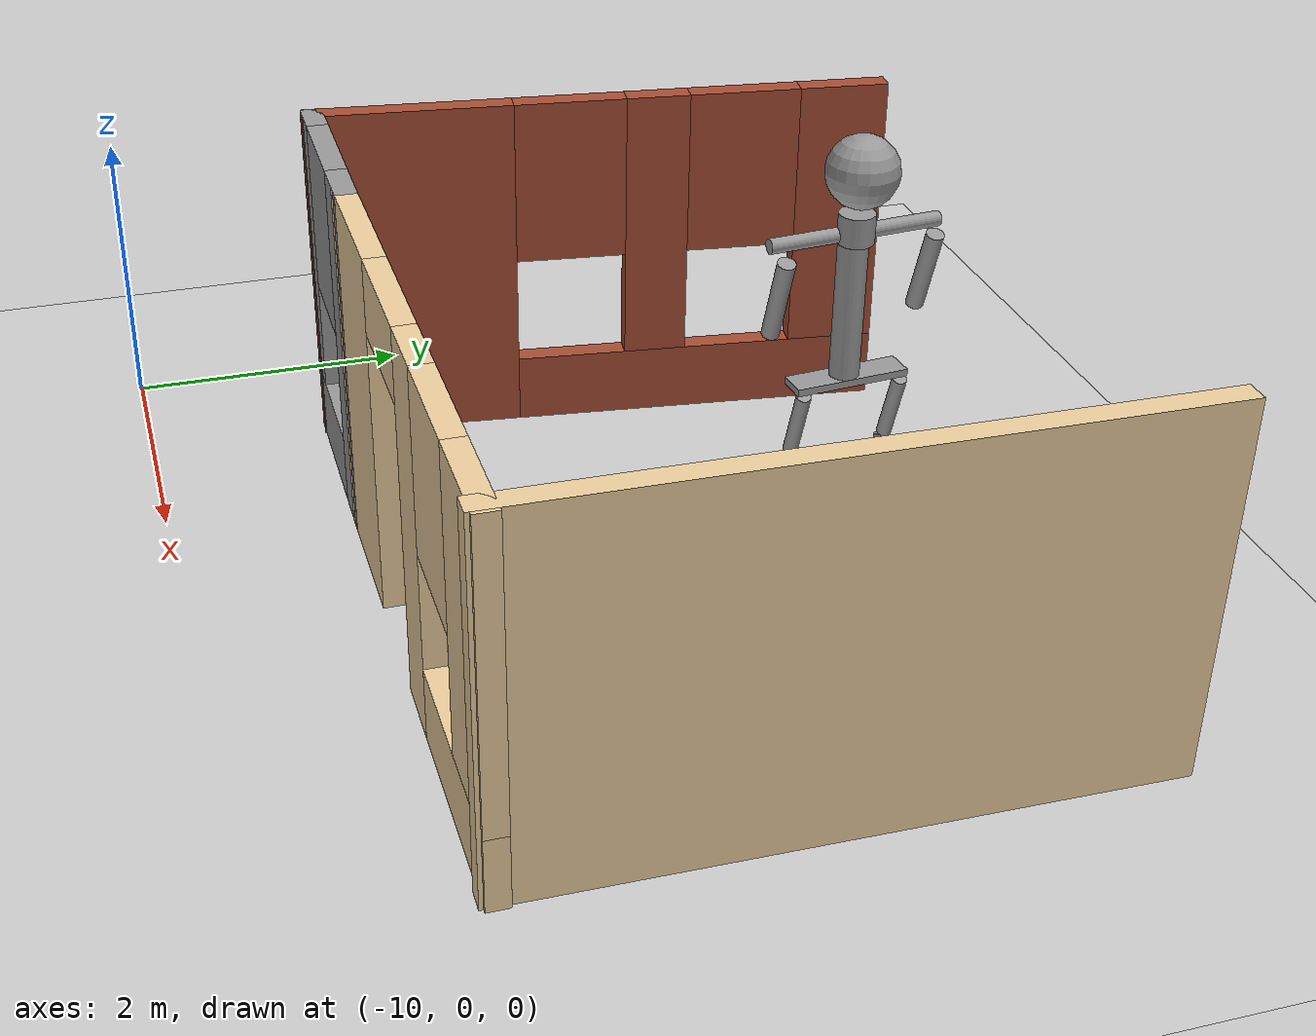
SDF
<sdf version="1.6">
 <world name="default">
  <model name="ground_plane">
   <static>1</static>
   <link name="link">
    <collision name="collision">
     <geometry><plane><normal>0 0 1</normal><size>100 100</size></plane></geometry>
     <surface><friction><ode><mu>100</mu><mu2>50</mu2></ode></friction></surface>
    </collision>
    <visual name="visual">
     <cast_shadows>0</cast_shadows>
     <geometry><plane><normal>0 0 1</normal><size>100 100</size></plane></geometry>
     <material>
      <script><uri>file://media/materials/scripts/gazebo.material</uri><name>Gazebo/Grey</name></script>
     </material>
    </visual>
   </link>
  </model>
  <model name="Building">
   <pose>-0.293126 -0.203944 0 0 -0 0</pose>
   <link name="Wall_23">
    <pose>-5.40433 1.5402 0 0 -0 0</pose>
    <visual name="Wall_23_Visual_0">
     <pose>-1.44346 0 1.25 0 -0 0</pose>
     <geometry><box><size>1.11308 0.15 2.5</size></box></geometry>
     <material>
      <script><uri>file://media/materials/scripts/gazebo.material</uri><name>Gazebo/Grey</name></script>
      <ambient>0.921569 0.807843 0.615686 1</ambient>
     </material>
     <meta><layer>0</layer></meta>
    </visual>
    <collision name="Wall_23_Collision_0">
     <geometry><box><size>1.11308 0.15 2.5</size></box></geometry>
     <pose>-1.44346 0 1.25 0 -0 0</pose>
    </collision>
    <visual name="Wall_23_Visual_1">
     <pose>0.249326 0 1.25 0 -0 0</pose>
     <geometry><box><size>0.4725 0.15 2.5</size></box></geometry>
     <material>
      <script><uri>file://media/materials/scripts/gazebo.material</uri><name>Gazebo/Grey</name></script>
      <ambient>0.921569 0.807843 0.615686 1</ambient>
     </material>
     <meta><layer>0</layer></meta>
    </visual>
    <collision name="Wall_23_Collision_1">
     <geometry><box><size>0.4725 0.15 2.5</size></box></geometry>
     <pose>0.249326 0 1.25 0 -0 0</pose>
    </collision>
    <visual name="Wall_23_Visual_2">
     <pose>1.24279 0 0.25 0 -0 0</pose>
     <geometry><box><size>1.51442 0.15 0.5</size></box></geometry>
     <material>
      <script><uri>file://media/materials/scripts/gazebo.material</uri><name>Gazebo/Grey</name></script>
      <ambient>0.921569 0.807843 0.615686 1</ambient>
     </material>
     <meta><layer>0</layer></meta>
    </visual>
    <collision name="Wall_23_Collision_2">
     <geometry><box><size>1.51442 0.15 0.5</size></box></geometry>
     <pose>1.24279 0 0.25 0 -0 0</pose>
    </collision>
    <visual name="Wall_23_Visual_3">
     <pose>1.64279 0 1.5 0 -0 0</pose>
     <geometry><box><size>0.714424 0.15 2</size></box></geometry>
     <material>
      <script><uri>file://media/materials/scripts/gazebo.material</uri><name>Gazebo/Grey</name></script>
      <ambient>0.921569 0.807843 0.615686 1</ambient>
     </material>
     <meta><layer>0</layer></meta>
    </visual>
    <collision name="Wall_23_Collision_3">
     <geometry><box><size>0.714424 0.15 2</size></box></geometry>
     <pose>1.64279 0 1.5 0 -0 0</pose>
    </collision>
    <visual name="Wall_23_Visual_4">
     <pose>0.885576 0 1.9 0 -0 0</pose>
     <geometry><box><size>0.8 0.15 1.2</size></box></geometry>
     <material>
      <script><uri>file://media/materials/scripts/gazebo.material</uri><name>Gazebo/Grey</name></script>
      <ambient>0.921569 0.807843 0.615686 1</ambient>
     </material>
     <meta><layer>0</layer></meta>
    </visual>
    <collision name="Wall_23_Collision_4">
     <geometry><box><size>0.8 0.15 1.2</size></box></geometry>
     <pose>0.885576 0 1.9 0 -0 0</pose>
    </collision>
    <visual name="Wall_23_Visual_5">
     <pose>-0.436924 0 2.25 0 -0 0</pose>
     <geometry><box><size>0.9 0.15 0.5</size></box></geometry>
     <material>
      <script><uri>file://media/materials/scripts/gazebo.material</uri><name>Gazebo/Grey</name></script>
      <ambient>0.921569 0.807843 0.615686 1</ambient>
     </material>
     <meta><layer>0</layer></meta>
    </visual>
    <collision name="Wall_23_Collision_5">
     <geometry><box><size>0.9 0.15 0.5</size></box></geometry>
     <pose>-0.436924 0 2.25 0 -0 0</pose>
    </collision>
   </link>
   <link name="Wall_33">
    <collision name="Wall_33_Collision">
     <geometry><box><size>4.20944 0.15 2.5</size></box></geometry>
     <pose>0 0 1.25 0 -0 0</pose>
    </collision>
    <visual name="Wall_33_Visual">
     <pose>0 0 1.25 0 -0 0</pose>
     <geometry><box><size>4.20944 0.15 2.5</size></box></geometry>
     <material>
      <script><uri>file://media/materials/scripts/gazebo.material</uri><name>Gazebo/Grey</name></script>
      <ambient>0.921569 0.807843 0.615686 1</ambient>
     </material>
     <meta><layer>0</layer></meta>
    </visual>
    <pose>-3.48131 3.54332 0 0 -0 1.55874</pose>
   </link>
   <link name="Wall_7">
    <pose>-8.01757 1.54676 0 0 -0 3.13207</pose>
    <visual name="Wall_7_Visual_0">
     <pose>-0.554694 0 1.25 0 -0 0</pose>
     <geometry><box><size>0.417153 0.15 2.5</size></box></geometry>
     <material>
      <script><uri>file://media/materials/scripts/gazebo.material</uri><name>Gazebo/Grey</name></script>
      <ambient>1 1 1 1</ambient>
     </material>
     <meta><layer>0</layer></meta>
    </visual>
    <collision name="Wall_7_Collision_0">
     <geometry><box><size>0.417153 0.15 2.5</size></box></geometry>
     <pose>-0.554694 0 1.25 0 -0 0</pose>
    </collision>
    <visual name="Wall_7_Visual_1">
     <pose>0.208577 0 0.25 0 -0 0</pose>
     <geometry><box><size>1.10939 0.15 0.5</size></box></geometry>
     <material>
      <script><uri>file://media/materials/scripts/gazebo.material</uri><name>Gazebo/Grey</name></script>
      <ambient>1 1 1 1</ambient>
     </material>
     <meta><layer>0</layer></meta>
    </visual>
    <collision name="Wall_7_Collision_1">
     <geometry><box><size>1.10939 0.15 0.5</size></box></geometry>
     <pose>0.208577 0 0.25 0 -0 0</pose>
    </collision>
    <visual name="Wall_7_Visual_2">
     <pose>0.608577 0 1.5 0 -0 0</pose>
     <geometry><box><size>0.309387 0.15 2</size></box></geometry>
     <material>
      <script><uri>file://media/materials/scripts/gazebo.material</uri><name>Gazebo/Grey</name></script>
      <ambient>1 1 1 1</ambient>
     </material>
     <meta><layer>0</layer></meta>
    </visual>
    <collision name="Wall_7_Collision_2">
     <geometry><box><size>0.309387 0.15 2</size></box></geometry>
     <pose>0.608577 0 1.5 0 -0 0</pose>
    </collision>
    <visual name="Wall_7_Visual_3">
     <pose>0.053883 0 1.9 0 -0 0</pose>
     <geometry><box><size>0.8 0.15 1.2</size></box></geometry>
     <material>
      <script><uri>file://media/materials/scripts/gazebo.material</uri><name>Gazebo/Grey</name></script>
      <ambient>1 1 1 1</ambient>
     </material>
     <meta><layer>0</layer></meta>
    </visual>
    <collision name="Wall_7_Collision_3">
     <geometry><box><size>0.8 0.15 1.2</size></box></geometry>
     <pose>0.053883 0 1.9 0 -0 0</pose>
    </collision>
   </link>
   <link name="Wall_8">
    <pose>-8.47295 3.54598 0 0 -0 1.45446</pose>
    <visual name="Wall_8_Visual_0">
     <pose>-1.34799 0 1.25 0 -0 0</pose>
     <geometry><box><size>1.46647 0.15 2.5</size></box></geometry>
     <material>
      <script><uri>file://media/materials/scripts/gazebo.material</uri><name>Gazebo/Bricks</name></script>
      <ambient>1 1 1 1</ambient>
     </material>
     <meta><layer>0</layer></meta>
    </visual>
    <collision name="Wall_8_Collision_0">
     <geometry><box><size>1.46647 0.15 2.5</size></box></geometry>
     <pose>-1.34799 0 1.25 0 -0 0</pose>
    </collision>
    <visual name="Wall_8_Visual_1">
     <pose>0.733235 0 0.25 0 -0 0</pose>
     <geometry><box><size>2.69598 0.15 0.5</size></box></geometry>
     <material>
      <script><uri>file://media/materials/scripts/gazebo.material</uri><name>Gazebo/Bricks</name></script>
      <ambient>1 1 1 1</ambient>
     </material>
     <meta><layer>0</layer></meta>
    </visual>
    <collision name="Wall_8_Collision_1">
     <geometry><box><size>2.69598 0.15 0.5</size></box></geometry>
     <pose>0.733235 0 0.25 0 -0 0</pose>
    </collision>
    <visual name="Wall_8_Visual_2">
     <pose>0.413888 0 1.5 0 -0 0</pose>
     <geometry><box><size>0.457289 0.15 2</size></box></geometry>
     <material>
      <script><uri>file://media/materials/scripts/gazebo.material</uri><name>Gazebo/Bricks</name></script>
      <ambient>1 1 1 1</ambient>
     </material>
     <meta><layer>0</layer></meta>
    </visual>
    <collision name="Wall_8_Collision_2">
     <geometry><box><size>0.457289 0.15 2</size></box></geometry>
     <pose>0.413888 0 1.5 0 -0 0</pose>
    </collision>
    <visual name="Wall_8_Visual_3">
     <pose>1.76188 0 1.5 0 -0 0</pose>
     <geometry><box><size>0.638694 0.15 2</size></box></geometry>
     <material>
      <script><uri>file://media/materials/scripts/gazebo.material</uri><name>Gazebo/Bricks</name></script>
      <ambient>1 1 1 1</ambient>
     </material>
     <meta><layer>0</layer></meta>
    </visual>
    <collision name="Wall_8_Collision_3">
     <geometry><box><size>0.638694 0.15 2</size></box></geometry>
     <pose>1.76188 0 1.5 0 -0 0</pose>
    </collision>
    <visual name="Wall_8_Visual_4">
     <pose>-0.214757 0 1.9 0 -0 0</pose>
     <geometry><box><size>0.8 0.15 1.2</size></box></geometry>
     <material>
      <script><uri>file://media/materials/scripts/gazebo.material</uri><name>Gazebo/Bricks</name></script>
      <ambient>1 1 1 1</ambient>
     </material>
     <meta><layer>0</layer></meta>
    </visual>
    <collision name="Wall_8_Collision_4">
     <geometry><box><size>0.8 0.15 1.2</size></box></geometry>
     <pose>-0.214757 0 1.9 0 -0 0</pose>
    </collision>
    <visual name="Wall_8_Visual_5">
     <pose>1.04253 0 1.9 0 -0 0</pose>
     <geometry><box><size>0.8 0.15 1.2</size></box></geometry>
     <material>
      <script><uri>file://media/materials/scripts/gazebo.material</uri><name>Gazebo/Bricks</name></script>
      <ambient>1 1 1 1</ambient>
     </material>
     <meta><layer>0</layer></meta>
    </visual>
    <collision name="Wall_8_Collision_5">
     <geometry><box><size>0.8 0.15 1.2</size></box></geometry>
     <pose>1.04253 0 1.9 0 -0 0</pose>
    </collision>
   </link>
   <static>1</static>
  </model>
  <model name="HumanoidRobot_1">
   <model name="Untitled">
    <model name="HumanoidRobot">
     <link name="link_1">
      <pose>-0.173443 0.410402 2.12746 0 -0 0</pose>
      <inertial>
       <mass>0.94</mass>
       <inertia><ixx>0.1</ixx><ixy>0</ixy><ixz>0</ixz><iyy>0.1</iyy><iyz>0</iyz><izz>0.1</izz></inertia>
      </inertial>
      <visual name="visual">
       <geometry><sphere><radius>0.24</radius></sphere></geometry>
       <material>
        <lighting>1</lighting>
        <script><uri>file://media/materials/scripts/gazebo.material</uri><name>Gazebo/Grey</name></script>
        <shader type="pixel"><normal_map>__default__</normal_map></shader>
        <ambient>0.3 0.3 0.3 1</ambient>
        <diffuse>0.7 0.7 0.7 1</diffuse>
        <specular>0.01 0.01 0.01 1</specular>
        <emissive>0 0 0 1</emissive>
       </material>
      </visual>
      <collision name="collision">
       <geometry><sphere><radius>0.24</radius></sphere></geometry>
       <surface>
        <friction>
         <ode><mu>1</mu><mu2>1</mu2><fdir1>0 0 0</fdir1><slip1>0</slip1><slip2>0</slip2></ode>
         <torsional>
          <coefficient>1</coefficient>
          <patch_radius>0</patch_radius>
          <surface_radius>0</surface_radius>
          <use_patch_radius>1</use_patch_radius>
          <ode><slip>0</slip></ode>
         </torsional>
        </friction>
        <bounce><restitution_coefficient>0</restitution_coefficient><threshold>1e+06</threshold></bounce>
        <contact>
         <collide_without_contact>0</collide_without_contact>
         <collide_without_contact_bitmask>1</collide_without_contact_bitmask>
         <collide_bitmask>1</collide_bitmask>
         <ode>
          <soft_cfm>0</soft_cfm>
          <soft_erp>0.2</soft_erp>
          <kp>1e+13</kp>
          <kd>1</kd>
          <max_vel>0.01</max_vel>
          <min_depth>0</min_depth>
         </ode>
         <bullet>
          <split_impulse>1</split_impulse>
          <split_impulse_penetration_threshold>-0.01</split_impulse_penetration_threshold>
          <soft_cfm>0</soft_cfm>
          <soft_erp>0.2</soft_erp>
          <kp>1e+13</kp>
          <kd>1</kd>
         </bullet>
        </contact>
       </surface>
      </collision>
     </link>
     <link name="link_2">
      <pose>-0.183443 0.400402 1.74746 0 -0 0</pose>
      <inertial>
       <mass>1</mass>
       <inertia><ixx>0.145833</ixx><ixy>0</ixy><ixz>0</ixz><iyy>0.145833</iyy><iyz>0</iyz><izz>0.125</izz></inertia>
      </inertial>
      <visual name="visual">
       <geometry><cylinder><radius>0.12</radius><length>0.2</length></cylinder></geometry>
       <material>
        <lighting>1</lighting>
        <script><uri>file://media/materials/scripts/gazebo.material</uri><name>Gazebo/Grey</name></script>
        <shader type="pixel"><normal_map>__default__</normal_map></shader>
        <ambient>0.3 0.3 0.3 1</ambient>
        <diffuse>0.7 0.7 0.7 1</diffuse>
        <specular>0.01 0.01 0.01 1</specular>
        <emissive>0 0 0 1</emissive>
       </material>
      </visual>
      <collision name="collision">
       <geometry><cylinder><radius>0.12</radius><length>0.2</length></cylinder></geometry>
       <surface>
        <friction>
         <ode><mu>1</mu><mu2>1</mu2><fdir1>0 0 0</fdir1><slip1>0</slip1><slip2>0</slip2></ode>
         <torsional>
          <coefficient>1</coefficient>
          <patch_radius>0</patch_radius>
          <surface_radius>0</surface_radius>
          <use_patch_radius>1</use_patch_radius>
          <ode><slip>0</slip></ode>
         </torsional>
        </friction>
        <bounce><restitution_coefficient>0</restitution_coefficient><threshold>1e+06</threshold></bounce>
        <contact>
         <collide_without_contact>0</collide_without_contact>
         <collide_without_contact_bitmask>1</collide_without_contact_bitmask>
         <collide_bitmask>1</collide_bitmask>
         <ode>
          <soft_cfm>0</soft_cfm>
          <soft_erp>0.2</soft_erp>
          <kp>1e+13</kp>
          <kd>1</kd>
          <max_vel>0.01</max_vel>
          <min_depth>0</min_depth>
         </ode>
         <bullet>
          <split_impulse>1</split_impulse>
          <split_impulse_penetration_threshold>-0.01</split_impulse_penetration_threshold>
          <soft_cfm>0</soft_cfm>
          <soft_erp>0.2</soft_erp>
          <kp>1e+13</kp>
          <kd>1</kd>
         </bullet>
        </contact>
       </surface>
      </collision>
     </link>
     <link name="link_3">
      <pose>-0.218443 0.410402 1.69752 0 -0 0</pose>
      <inertial>
       <mass>1</mass>
       <inertia><ixx>0.145833</ixx><ixy>0</ixy><ixz>0</ixz><iyy>0.145833</iyy><iyz>0</iyz><izz>0.125</izz></inertia>
      </inertial>
      <visual name="visual">
       <pose>0 0 0 1.5707 -0 0</pose>
       <geometry><cylinder><radius>0.05</radius><length>1.2</length></cylinder></geometry>
       <material>
        <lighting>1</lighting>
        <script><uri>file://media/materials/scripts/gazebo.material</uri><name>Gazebo/Grey</name></script>
        <shader type="pixel"><normal_map>__default__</normal_map></shader>
        <ambient>0.3 0.3 0.3 1</ambient>
        <diffuse>0.7 0.7 0.7 1</diffuse>
        <specular>0.01 0.01 0.01 1</specular>
        <emissive>0 0 0 1</emissive>
       </material>
      </visual>
      <collision name="collision">
       <pose>0 0 0 1.5707 -0 0</pose>
       <geometry><cylinder><radius>0.05</radius><length>1.2</length></cylinder></geometry>
       <surface>
        <friction>
         <ode><mu>1</mu><mu2>1</mu2><fdir1>0 0 0</fdir1><slip1>0</slip1><slip2>0</slip2></ode>
         <torsional>
          <coefficient>1</coefficient>
          <patch_radius>0</patch_radius>
          <surface_radius>0</surface_radius>
          <use_patch_radius>1</use_patch_radius>
          <ode><slip>0</slip></ode>
         </torsional>
        </friction>
        <bounce><restitution_coefficient>0</restitution_coefficient><threshold>1e+06</threshold></bounce>
        <contact>
         <collide_without_contact>0</collide_without_contact>
         <collide_without_contact_bitmask>1</collide_without_contact_bitmask>
         <collide_bitmask>1</collide_bitmask>
         <ode>
          <soft_cfm>0</soft_cfm>
          <soft_erp>0.2</soft_erp>
          <kp>1e+13</kp>
          <kd>1</kd>
          <max_vel>0.01</max_vel>
          <min_depth>0</min_depth>
         </ode>
         <bullet>
          <split_impulse>1</split_impulse>
          <split_impulse_penetration_threshold>-0.01</split_impulse_penetration_threshold>
          <soft_cfm>0</soft_cfm>
          <soft_erp>0.2</soft_erp>
          <kp>1e+13</kp>
          <kd>1</kd>
         </bullet>
        </contact>
       </surface>
      </collision>
     </link>
     <link name="link_4">
      <pose>-0.173443 -0.129603 1.34313 0 -0 0</pose>
      <inertial>
       <mass>1</mass>
       <inertia><ixx>0.145833</ixx><ixy>0</ixy><ixz>0</ixz><iyy>0.145833</iyy><iyz>0</iyz><izz>0.125</izz></inertia>
      </inertial>
      <visual name="visual">
       <pose>0 0 0 0 0.3 0</pose>
       <geometry><cylinder><radius>0.06</radius><length>0.6</length></cylinder></geometry>
       <material>
        <lighting>1</lighting>
        <script><uri>file://media/materials/scripts/gazebo.material</uri><name>Gazebo/Grey</name></script>
        <shader type="pixel"><normal_map>__default__</normal_map></shader>
        <ambient>0.3 0.3 0.3 1</ambient>
        <diffuse>0.7 0.7 0.7 1</diffuse>
        <specular>0.01 0.01 0.01 1</specular>
        <emissive>0 0 0 1</emissive>
       </material>
      </visual>
      <collision name="collision">
       <pose>0 0 0 0 0.3 0</pose>
       <geometry><cylinder><radius>0.06</radius><length>0.6</length></cylinder></geometry>
       <surface>
        <friction>
         <ode><mu>1</mu><mu2>1</mu2><fdir1>0 0 0</fdir1><slip1>0</slip1><slip2>0</slip2></ode>
         <torsional>
          <coefficient>1</coefficient>
          <patch_radius>0</patch_radius>
          <surface_radius>0</surface_radius>
          <use_patch_radius>1</use_patch_radius>
          <ode><slip>0</slip></ode>
         </torsional>
        </friction>
        <bounce><restitution_coefficient>0</restitution_coefficient><threshold>1e+06</threshold></bounce>
        <contact>
         <collide_without_contact>0</collide_without_contact>
         <collide_without_contact_bitmask>1</collide_without_contact_bitmask>
         <collide_bitmask>1</collide_bitmask>
         <ode>
          <soft_cfm>0</soft_cfm>
          <soft_erp>0.2</soft_erp>
          <kp>1e+13</kp>
          <kd>1</kd>
          <max_vel>0.01</max_vel>
          <min_depth>0</min_depth>
         </ode>
         <bullet>
          <split_impulse>1</split_impulse>
          <split_impulse_penetration_threshold>-0.01</split_impulse_penetration_threshold>
          <soft_cfm>0</soft_cfm>
          <soft_erp>0.2</soft_erp>
          <kp>1e+13</kp>
          <kd>1</kd>
         </bullet>
        </contact>
       </surface>
      </collision>
     </link>
     <link name="link_4_clone">
      <pose>-0.224419 0.950407 1.34313 0 -0 0</pose>
      <inertial>
       <mass>1</mass>
       <inertia><ixx>0.145833</ixx><ixy>0</ixy><ixz>0</ixz><iyy>0.145833</iyy><iyz>0</iyz><izz>0.125</izz></inertia>
      </inertial>
      <visual name="visual">
       <pose>0 0 0 0 0.3 0</pose>
       <geometry><cylinder><radius>0.06</radius><length>0.6</length></cylinder></geometry>
       <material>
        <lighting>1</lighting>
        <script><uri>file://media/materials/scripts/gazebo.material</uri><name>Gazebo/Grey</name></script>
        <shader type="pixel"><normal_map>__default__</normal_map></shader>
        <ambient>0.3 0.3 0.3 1</ambient>
        <diffuse>0.7 0.7 0.7 1</diffuse>
        <specular>0.01 0.01 0.01 1</specular>
        <emissive>0 0 0 1</emissive>
       </material>
      </visual>
      <collision name="collision">
       <pose>0 0 0 0 0.3 0</pose>
       <geometry><cylinder><radius>0.06</radius><length>0.6</length></cylinder></geometry>
       <surface>
        <friction>
         <ode><mu>1</mu><mu2>1</mu2><fdir1>0 0 0</fdir1><slip1>0</slip1><slip2>0</slip2></ode>
         <torsional>
          <coefficient>1</coefficient>
          <patch_radius>0</patch_radius>
          <surface_radius>0</surface_radius>
          <use_patch_radius>1</use_patch_radius>
          <ode><slip>0</slip></ode>
         </torsional>
        </friction>
        <bounce><restitution_coefficient>0</restitution_coefficient><threshold>1e+06</threshold></bounce>
        <contact>
         <collide_without_contact>0</collide_without_contact>
         <collide_without_contact_bitmask>1</collide_without_contact_bitmask>
         <collide_bitmask>1</collide_bitmask>
         <ode>
          <soft_cfm>0</soft_cfm>
          <soft_erp>0.2</soft_erp>
          <kp>1e+13</kp>
          <kd>1</kd>
          <max_vel>0.01</max_vel>
          <min_depth>0</min_depth>
         </ode>
         <bullet>
          <split_impulse>1</split_impulse>
          <split_impulse_penetration_threshold>-0.01</split_impulse_penetration_threshold>
          <soft_cfm>0</soft_cfm>
          <soft_erp>0.2</soft_erp>
          <kp>1e+13</kp>
          <kd>1</kd>
         </bullet>
        </contact>
       </surface>
      </collision>
     </link>
     <link name="link_5">
      <pose>-0.193443 0.390402 1.14746 0 -0 0</pose>
      <inertial>
       <mass>1</mass>
       <inertia><ixx>0.145833</ixx><ixy>0</ixy><ixz>0</ixz><iyy>0.145833</iyy><iyz>0</iyz><izz>0.125</izz></inertia>
      </inertial>
      <visual name="visual">
       <geometry><cylinder><radius>0.1</radius><length>1</length></cylinder></geometry>
       <material>
        <lighting>1</lighting>
        <script><uri>file://media/materials/scripts/gazebo.material</uri><name>Gazebo/Grey</name></script>
        <shader type="pixel"><normal_map>__default__</normal_map></shader>
        <ambient>0.3 0.3 0.3 1</ambient>
        <diffuse>0.7 0.7 0.7 1</diffuse>
        <specular>0.01 0.01 0.01 1</specular>
        <emissive>0 0 0 1</emissive>
       </material>
      </visual>
      <collision name="collision">
       <geometry><cylinder><radius>0.1</radius><length>1</length></cylinder></geometry>
       <surface>
        <friction>
         <ode><mu>1</mu><mu2>1</mu2><fdir1>0 0 0</fdir1><slip1>0</slip1><slip2>0</slip2></ode>
         <torsional>
          <coefficient>1</coefficient>
          <patch_radius>0</patch_radius>
          <surface_radius>0</surface_radius>
          <use_patch_radius>1</use_patch_radius>
          <ode><slip>0</slip></ode>
         </torsional>
        </friction>
        <bounce><restitution_coefficient>0</restitution_coefficient><threshold>1e+06</threshold></bounce>
        <contact>
         <collide_without_contact>0</collide_without_contact>
         <collide_without_contact_bitmask>1</collide_without_contact_bitmask>
         <collide_bitmask>1</collide_bitmask>
         <ode>
          <soft_cfm>0</soft_cfm>
          <soft_erp>0.2</soft_erp>
          <kp>1e+13</kp>
          <kd>1</kd>
          <max_vel>0.01</max_vel>
          <min_depth>0</min_depth>
         </ode>
         <bullet>
          <split_impulse>1</split_impulse>
          <split_impulse_penetration_threshold>-0.01</split_impulse_penetration_threshold>
          <soft_cfm>0</soft_cfm>
          <soft_erp>0.2</soft_erp>
          <kp>1e+13</kp>
          <kd>1</kd>
         </bullet>
        </contact>
       </surface>
      </collision>
     </link>
     <link name="link_6">
      <pose>-0.193443 0.410402 0.672459 0 -0 0</pose>
      <inertial>
       <mass>1</mass>
       <inertia>
        <ixx>0.166667</ixx>
        <ixy>0</ixy>
        <ixz>0</ixz>
        <iyy>0.166667</iyy>
        <iyz>0</iyz>
        <izz>0.166667</izz>
       </inertia>
      </inertial>
      <visual name="visual">
       <geometry><box><size>0.2 0.8 0.05</size></box></geometry>
       <material>
        <lighting>1</lighting>
        <script><uri>file://media/materials/scripts/gazebo.material</uri><name>Gazebo/Grey</name></script>
        <shader type="pixel"><normal_map>__default__</normal_map></shader>
        <ambient>0.3 0.3 0.3 1</ambient>
        <diffuse>0.7 0.7 0.7 1</diffuse>
        <specular>0.01 0.01 0.01 1</specular>
        <emissive>0 0 0 1</emissive>
       </material>
      </visual>
      <collision name="collision">
       <geometry><box><size>0.2 0.8 0.05</size></box></geometry>
       <surface>
        <friction>
         <ode><mu>1</mu><mu2>1</mu2><fdir1>0 0 0</fdir1><slip1>0</slip1><slip2>0</slip2></ode>
         <torsional>
          <coefficient>1</coefficient>
          <patch_radius>0</patch_radius>
          <surface_radius>0</surface_radius>
          <use_patch_radius>1</use_patch_radius>
          <ode><slip>0</slip></ode>
         </torsional>
        </friction>
        <bounce><restitution_coefficient>0</restitution_coefficient><threshold>1e+06</threshold></bounce>
        <contact>
         <collide_without_contact>0</collide_without_contact>
         <collide_without_contact_bitmask>1</collide_without_contact_bitmask>
         <collide_bitmask>1</collide_bitmask>
         <ode>
          <soft_cfm>0</soft_cfm>
          <soft_erp>0.2</soft_erp>
          <kp>1e+13</kp>
          <kd>1</kd>
          <max_vel>0.01</max_vel>
          <min_depth>0</min_depth>
         </ode>
         <bullet>
          <split_impulse>1</split_impulse>
          <split_impulse_penetration_threshold>-0.01</split_impulse_penetration_threshold>
          <soft_cfm>0</soft_cfm>
          <soft_erp>0.2</soft_erp>
          <kp>1e+13</kp>
          <kd>1</kd>
         </bullet>
        </contact>
       </surface>
      </collision>
     </link>
     <link name="link_7">
      <pose>-0.18262 0.060402 0.393848 0 -0 0</pose>
      <inertial>
       <mass>1</mass>
       <inertia><ixx>0.145833</ixx><ixy>0</ixy><ixz>0</ixz><iyy>0.145833</iyy><iyz>0</iyz><izz>0.125</izz></inertia>
      </inertial>
      <visual name="visual">
       <pose>0 0 0 0 0.3 0</pose>
       <geometry><cylinder><radius>0.05</radius><length>0.5</length></cylinder></geometry>
       <material>
        <lighting>1</lighting>
        <script><uri>file://media/materials/scripts/gazebo.material</uri><name>Gazebo/Grey</name></script>
        <shader type="pixel"><normal_map>__default__</normal_map></shader>
        <ambient>0.3 0.3 0.3 1</ambient>
        <diffuse>0.7 0.7 0.7 1</diffuse>
        <specular>0.01 0.01 0.01 1</specular>
        <emissive>0 0 0 1</emissive>
       </material>
      </visual>
      <collision name="collision">
       <pose>0 0 0 0 0.3 0</pose>
       <geometry><cylinder><radius>0.05</radius><length>0.5</length></cylinder></geometry>
       <surface>
        <friction>
         <ode><mu>1</mu><mu2>1</mu2><fdir1>0 0 0</fdir1><slip1>0</slip1><slip2>0</slip2></ode>
         <torsional>
          <coefficient>1</coefficient>
          <patch_radius>0</patch_radius>
          <surface_radius>0</surface_radius>
          <use_patch_radius>1</use_patch_radius>
          <ode><slip>0</slip></ode>
         </torsional>
        </friction>
        <bounce><restitution_coefficient>0</restitution_coefficient><threshold>1e+06</threshold></bounce>
        <contact>
         <collide_without_contact>0</collide_without_contact>
         <collide_without_contact_bitmask>1</collide_without_contact_bitmask>
         <collide_bitmask>1</collide_bitmask>
         <ode>
          <soft_cfm>0</soft_cfm>
          <soft_erp>0.2</soft_erp>
          <kp>1e+13</kp>
          <kd>1</kd>
          <max_vel>0.01</max_vel>
          <min_depth>0</min_depth>
         </ode>
         <bullet>
          <split_impulse>1</split_impulse>
          <split_impulse_penetration_threshold>-0.01</split_impulse_penetration_threshold>
          <soft_cfm>0</soft_cfm>
          <soft_erp>0.2</soft_erp>
          <kp>1e+13</kp>
          <kd>1</kd>
         </bullet>
        </contact>
       </surface>
      </collision>
     </link>
     <link name="link_7_clone">
      <pose>-0.173443 0.760402 0.393849 0 -0 0</pose>
      <inertial>
       <mass>1</mass>
       <inertia><ixx>0.145833</ixx><ixy>0</ixy><ixz>0</ixz><iyy>0.145833</iyy><iyz>0</iyz><izz>0.125</izz></inertia>
      </inertial>
      <visual name="visual">
       <pose>0 0 0 0 0.3 0</pose>
       <geometry><cylinder><radius>0.05</radius><length>0.5</length></cylinder></geometry>
       <material>
        <lighting>1</lighting>
        <script><uri>file://media/materials/scripts/gazebo.material</uri><name>Gazebo/Grey</name></script>
        <shader type="pixel"><normal_map>__default__</normal_map></shader>
        <ambient>0.3 0.3 0.3 1</ambient>
        <diffuse>0.7 0.7 0.7 1</diffuse>
        <specular>0.01 0.01 0.01 1</specular>
        <emissive>0 0 0 1</emissive>
       </material>
      </visual>
      <collision name="collision">
       <pose>0 0 0 0 0.3 0</pose>
       <geometry><cylinder><radius>0.05</radius><length>0.5</length></cylinder></geometry>
       <surface>
        <friction>
         <ode><mu>1</mu><mu2>1</mu2><fdir1>0 0 0</fdir1><slip1>0</slip1><slip2>0</slip2></ode>
         <torsional>
          <coefficient>1</coefficient>
          <patch_radius>0</patch_radius>
          <surface_radius>0</surface_radius>
          <use_patch_radius>1</use_patch_radius>
          <ode><slip>0</slip></ode>
         </torsional>
        </friction>
        <bounce><restitution_coefficient>0</restitution_coefficient><threshold>1e+06</threshold></bounce>
        <contact>
         <collide_without_contact>0</collide_without_contact>
         <collide_without_contact_bitmask>1</collide_without_contact_bitmask>
         <collide_bitmask>1</collide_bitmask>
         <ode>
          <soft_cfm>0</soft_cfm>
          <soft_erp>0.2</soft_erp>
          <kp>1e+13</kp>
          <kd>1</kd>
          <max_vel>0.01</max_vel>
          <min_depth>0</min_depth>
         </ode>
         <bullet>
          <split_impulse>1</split_impulse>
          <split_impulse_penetration_threshold>-0.01</split_impulse_penetration_threshold>
          <soft_cfm>0</soft_cfm>
          <soft_erp>0.2</soft_erp>
          <kp>1e+13</kp>
          <kd>1</kd>
         </bullet>
        </contact>
       </surface>
      </collision>
     </link>
     <link name="link_8">
      <pose>-0.173443 0.060402 -0.208906 0 -0 0</pose>
      <inertial>
       <mass>1</mass>
       <inertia><ixx>0.145833</ixx><ixy>0</ixy><ixz>0</ixz><iyy>0.145833</iyy><iyz>0</iyz><izz>0.125</izz></inertia>
      </inertial>
      <visual name="visual">
       <pose>0 0 0 0 -0.3 0</pose>
       <geometry><cylinder><radius>0.05</radius><length>0.7</length></cylinder></geometry>
       <material>
        <lighting>1</lighting>
        <script><uri>file://media/materials/scripts/gazebo.material</uri><name>Gazebo/Grey</name></script>
        <shader type="pixel"><normal_map>__default__</normal_map></shader>
        <ambient>0.3 0.3 0.3 1</ambient>
        <diffuse>0.7 0.7 0.7 1</diffuse>
        <specular>0.01 0.01 0.01 1</specular>
        <emissive>0 0 0 1</emissive>
       </material>
      </visual>
      <collision name="collision">
       <pose>0 0 0 0 -0.3 0</pose>
       <geometry><cylinder><radius>0.05</radius><length>0.7</length></cylinder></geometry>
       <surface>
        <friction>
         <ode><mu>1</mu><mu2>1</mu2><fdir1>0 0 0</fdir1><slip1>0</slip1><slip2>0</slip2></ode>
         <torsional>
          <coefficient>1</coefficient>
          <patch_radius>0</patch_radius>
          <surface_radius>0</surface_radius>
          <use_patch_radius>1</use_patch_radius>
          <ode><slip>0</slip></ode>
         </torsional>
        </friction>
        <bounce><restitution_coefficient>0</restitution_coefficient><threshold>1e+06</threshold></bounce>
        <contact>
         <collide_without_contact>0</collide_without_contact>
         <collide_without_contact_bitmask>1</collide_without_contact_bitmask>
         <collide_bitmask>1</collide_bitmask>
         <ode>
          <soft_cfm>0</soft_cfm>
          <soft_erp>0.2</soft_erp>
          <kp>1e+13</kp>
          <kd>1</kd>
          <max_vel>0.01</max_vel>
          <min_depth>0</min_depth>
         </ode>
         <bullet>
          <split_impulse>1</split_impulse>
          <split_impulse_penetration_threshold>-0.01</split_impulse_penetration_threshold>
          <soft_cfm>0</soft_cfm>
          <soft_erp>0.2</soft_erp>
          <kp>1e+13</kp>
          <kd>1</kd>
         </bullet>
        </contact>
       </surface>
      </collision>
     </link>
     <link name="link_8_clone">
      <pose>-0.173443 0.760402 -0.208905 0 -0 0</pose>
      <inertial>
       <mass>1</mass>
       <inertia><ixx>0.145833</ixx><ixy>0</ixy><ixz>0</ixz><iyy>0.145833</iyy><iyz>0</iyz><izz>0.125</izz></inertia>
      </inertial>
      <visual name="visual">
       <pose>0 0 0 0 -0.3 0</pose>
       <geometry><cylinder><radius>0.05</radius><length>0.7</length></cylinder></geometry>
       <material>
        <lighting>1</lighting>
        <script><uri>file://media/materials/scripts/gazebo.material</uri><name>Gazebo/Grey</name></script>
        <shader type="pixel"><normal_map>__default__</normal_map></shader>
        <ambient>0.3 0.3 0.3 1</ambient>
        <diffuse>0.7 0.7 0.7 1</diffuse>
        <specular>0.01 0.01 0.01 1</specular>
        <emissive>0 0 0 1</emissive>
       </material>
      </visual>
      <collision name="collision">
       <pose>0 0 0 0 -0.3 0</pose>
       <geometry><cylinder><radius>0.05</radius><length>0.7</length></cylinder></geometry>
       <surface>
        <friction>
         <ode><mu>1</mu><mu2>1</mu2><fdir1>0 0 0</fdir1><slip1>0</slip1><slip2>0</slip2></ode>
         <torsional>
          <coefficient>1</coefficient>
          <patch_radius>0</patch_radius>
          <surface_radius>0</surface_radius>
          <use_patch_radius>1</use_patch_radius>
          <ode><slip>0</slip></ode>
         </torsional>
        </friction>
        <bounce><restitution_coefficient>0</restitution_coefficient><threshold>1e+06</threshold></bounce>
        <contact>
         <collide_without_contact>0</collide_without_contact>
         <collide_without_contact_bitmask>1</collide_without_contact_bitmask>
         <collide_bitmask>1</collide_bitmask>
         <ode>
          <soft_cfm>0</soft_cfm>
          <soft_erp>0.2</soft_erp>
          <kp>1e+13</kp>
          <kd>1</kd>
          <max_vel>0.01</max_vel>
          <min_depth>0</min_depth>
         </ode>
         <bullet>
          <split_impulse>1</split_impulse>
          <split_impulse_penetration_threshold>-0.01</split_impulse_penetration_threshold>
          <soft_cfm>0</soft_cfm>
          <soft_erp>0.2</soft_erp>
          <kp>1e+13</kp>
          <kd>1</kd>
         </bullet>
        </contact>
       </surface>
      </collision>
     </link>
     <link name="link_9">
      <pose>-0.073443 0.072902 -0.54305 0 -0 0</pose>
      <inertial>
       <mass>1</mass>
       <inertia>
        <ixx>0.166667</ixx>
        <ixy>0</ixy>
        <ixz>0</ixz>
        <iyy>0.166667</iyy>
        <iyz>0</iyz>
        <izz>0.166667</izz>
       </inertia>
      </inertial>
      <visual name="visual">
       <geometry><box><size>0.5 0.3 0.03</size></box></geometry>
       <material>
        <lighting>1</lighting>
        <script><uri>file://media/materials/scripts/gazebo.material</uri><name>Gazebo/Grey</name></script>
        <shader type="pixel"><normal_map>__default__</normal_map></shader>
        <ambient>0.3 0.3 0.3 1</ambient>
        <diffuse>0.7 0.7 0.7 1</diffuse>
        <specular>0.01 0.01 0.01 1</specular>
        <emissive>0 0 0 1</emissive>
       </material>
      </visual>
      <collision name="collision">
       <geometry><box><size>0.5 0.3 0.03</size></box></geometry>
       <surface>
        <friction>
         <ode><mu>1</mu><mu2>1</mu2><fdir1>0 0 0</fdir1><slip1>0</slip1><slip2>0</slip2></ode>
         <torsional>
          <coefficient>1</coefficient>
          <patch_radius>0</patch_radius>
          <surface_radius>0</surface_radius>
          <use_patch_radius>1</use_patch_radius>
          <ode><slip>0</slip></ode>
         </torsional>
        </friction>
        <bounce><restitution_coefficient>0</restitution_coefficient><threshold>1e+06</threshold></bounce>
        <contact>
         <collide_without_contact>0</collide_without_contact>
         <collide_without_contact_bitmask>1</collide_without_contact_bitmask>
         <collide_bitmask>1</collide_bitmask>
         <ode>
          <soft_cfm>0</soft_cfm>
          <soft_erp>0.2</soft_erp>
          <kp>1e+13</kp>
          <kd>1</kd>
          <max_vel>0.01</max_vel>
          <min_depth>0</min_depth>
         </ode>
         <bullet>
          <split_impulse>1</split_impulse>
          <split_impulse_penetration_threshold>-0.01</split_impulse_penetration_threshold>
          <soft_cfm>0</soft_cfm>
          <soft_erp>0.2</soft_erp>
          <kp>1e+13</kp>
          <kd>1</kd>
         </bullet>
        </contact>
       </surface>
      </collision>
     </link>
     <link name="link_9_clone">
      <pose>-0.073443 0.760402 -0.543049 0 -0 0</pose>
      <inertial>
       <mass>1</mass>
       <inertia>
        <ixx>0.166667</ixx>
        <ixy>0</ixy>
        <ixz>0</ixz>
        <iyy>0.166667</iyy>
        <iyz>0</iyz>
        <izz>0.166667</izz>
       </inertia>
      </inertial>
      <visual name="visual">
       <geometry><box><size>0.5 0.3 0.03</size></box></geometry>
       <material>
        <lighting>1</lighting>
        <script><uri>file://media/materials/scripts/gazebo.material</uri><name>Gazebo/Grey</name></script>
        <shader type="pixel"><normal_map>__default__</normal_map></shader>
        <ambient>0.3 0.3 0.3 1</ambient>
        <diffuse>0.7 0.7 0.7 1</diffuse>
        <specular>0.01 0.01 0.01 1</specular>
        <emissive>0 0 0 1</emissive>
       </material>
      </visual>
      <collision name="collision">
       <geometry><box><size>0.5 0.3 0.03</size></box></geometry>
       <surface>
        <friction>
         <ode><mu>1</mu><mu2>1</mu2><fdir1>0 0 0</fdir1><slip1>0</slip1><slip2>0</slip2></ode>
         <torsional>
          <coefficient>1</coefficient>
          <patch_radius>0</patch_radius>
          <surface_radius>0</surface_radius>
          <use_patch_radius>1</use_patch_radius>
          <ode><slip>0</slip></ode>
         </torsional>
        </friction>
        <bounce><restitution_coefficient>0</restitution_coefficient><threshold>1e+06</threshold></bounce>
        <contact>
         <collide_without_contact>0</collide_without_contact>
         <collide_without_contact_bitmask>1</collide_without_contact_bitmask>
         <collide_bitmask>1</collide_bitmask>
         <ode>
          <soft_cfm>0</soft_cfm>
          <soft_erp>0.2</soft_erp>
          <kp>1e+13</kp>
          <kd>1</kd>
          <max_vel>0.01</max_vel>
          <min_depth>0</min_depth>
         </ode>
         <bullet>
          <split_impulse>1</split_impulse>
          <split_impulse_penetration_threshold>-0.01</split_impulse_penetration_threshold>
          <soft_cfm>0</soft_cfm>
          <soft_erp>0.2</soft_erp>
          <kp>1e+13</kp>
          <kd>1</kd>
         </bullet>
        </contact>
       </surface>
      </collision>
     </link>
     <joint name="link_1_JOINT_0" type="fixed">
      <parent>link_1</parent>
      <child>link_2</child>
      <axis>
       <xyz>1 0 0</xyz>
       <use_parent_model_frame>0</use_parent_model_frame>
       <limit>
        <lower>-1.79769e+308</lower>
        <upper>1.79769e+308</upper>
        <effort>-1</effort>
        <velocity>-1</velocity>
       </limit>
       <dynamics>
        <spring_reference>0</spring_reference>
        <spring_stiffness>0</spring_stiffness>
        <damping>0</damping>
       </dynamics>
      </axis>
      <physics>
       <ode><limit><cfm>0</cfm><erp>0.2</erp></limit><suspension><cfm>0</cfm><erp>0.2</erp></suspension></ode>
      </physics>
     </joint>
     <joint name="link_2_JOINT_1" type="fixed">
      <parent>link_2</parent>
      <child>link_3</child>
      <axis>
       <xyz>1 0 0</xyz>
       <use_parent_model_frame>0</use_parent_model_frame>
       <limit>
        <lower>-1.79769e+308</lower>
        <upper>1.79769e+308</upper>
        <effort>-1</effort>
        <velocity>-1</velocity>
       </limit>
       <dynamics>
        <spring_reference>0</spring_reference>
        <spring_stiffness>0</spring_stiffness>
        <damping>0</damping>
       </dynamics>
      </axis>
      <physics>
       <ode><limit><cfm>0</cfm><erp>0.2</erp></limit><suspension><cfm>0</cfm><erp>0.2</erp></suspension></ode>
      </physics>
     </joint>
     <joint name="link_2_JOINT_4" type="fixed">
      <parent>link_2</parent>
      <child>link_5</child>
      <axis>
       <xyz>0 0 1</xyz>
       <use_parent_model_frame>0</use_parent_model_frame>
       <limit>
        <lower>-1.79769e+308</lower>
        <upper>1.79769e+308</upper>
        <effort>-1</effort>
        <velocity>-1</velocity>
       </limit>
       <dynamics>
        <spring_reference>0</spring_reference>
        <spring_stiffness>0</spring_stiffness>
        <damping>0</damping>
       </dynamics>
      </axis>
      <physics>
       <ode><limit><cfm>0</cfm><erp>0.2</erp></limit><suspension><cfm>0</cfm><erp>0.2</erp></suspension></ode>
      </physics>
     </joint>
     <joint name="link_3_JOINT_2" type="fixed">
      <parent>link_3</parent>
      <child>link_4</child>
      <axis>
       <xyz>1 0 0</xyz>
       <use_parent_model_frame>0</use_parent_model_frame>
       <limit>
        <lower>-1.79769e+308</lower>
        <upper>1.79769e+308</upper>
        <effort>-1</effort>
        <velocity>-1</velocity>
       </limit>
       <dynamics>
        <spring_reference>0</spring_reference>
        <spring_stiffness>0</spring_stiffness>
        <damping>0</damping>
       </dynamics>
      </axis>
      <physics>
       <ode><limit><cfm>0</cfm><erp>0.2</erp></limit><suspension><cfm>0</cfm><erp>0.2</erp></suspension></ode>
      </physics>
     </joint>
     <joint name="link_3_JOINT_3" type="fixed">
      <parent>link_3</parent>
      <child>link_4_clone</child>
      <axis>
       <xyz>1 0 0</xyz>
       <use_parent_model_frame>0</use_parent_model_frame>
       <limit>
        <lower>-1.79769e+308</lower>
        <upper>1.79769e+308</upper>
        <effort>-1</effort>
        <velocity>-1</velocity>
       </limit>
       <dynamics>
        <spring_reference>0</spring_reference>
        <spring_stiffness>0</spring_stiffness>
        <damping>0</damping>
       </dynamics>
      </axis>
      <physics>
       <ode><limit><cfm>0</cfm><erp>0.2</erp></limit><suspension><cfm>0</cfm><erp>0.2</erp></suspension></ode>
      </physics>
     </joint>
     <joint name="link_5_JOINT_5" type="fixed">
      <parent>link_5</parent>
      <child>link_6</child>
      <axis>
       <xyz>0 0 1</xyz>
       <use_parent_model_frame>0</use_parent_model_frame>
       <limit>
        <lower>-1.79769e+308</lower>
        <upper>1.79769e+308</upper>
        <effort>-1</effort>
        <velocity>-1</velocity>
       </limit>
       <dynamics>
        <spring_reference>0</spring_reference>
        <spring_stiffness>0</spring_stiffness>
        <damping>0</damping>
       </dynamics>
      </axis>
      <physics>
       <ode><limit><cfm>0</cfm><erp>0.2</erp></limit><suspension><cfm>0</cfm><erp>0.2</erp></suspension></ode>
      </physics>
     </joint>
     <joint name="link_6_JOINT_6" type="fixed">
      <parent>link_6</parent>
      <child>link_7</child>
      <axis>
       <xyz>0 1 0</xyz>
       <use_parent_model_frame>0</use_parent_model_frame>
       <limit>
        <lower>-1.79769e+308</lower>
        <upper>1.79769e+308</upper>
        <effort>-1</effort>
        <velocity>-1</velocity>
       </limit>
       <dynamics>
        <spring_reference>0</spring_reference>
        <spring_stiffness>0</spring_stiffness>
        <damping>0</damping>
        <friction>0</friction>
       </dynamics>
      </axis>
      <physics>
       <ode><limit><cfm>0</cfm><erp>0.2</erp></limit><suspension><cfm>0</cfm><erp>0.2</erp></suspension></ode>
      </physics>
     </joint>
     <joint name="link_6_JOINT_7" type="fixed">
      <parent>link_6</parent>
      <child>link_7_clone</child>
      <axis>
       <xyz>0 1 0</xyz>
       <use_parent_model_frame>0</use_parent_model_frame>
       <limit>
        <lower>-1.79769e+308</lower>
        <upper>1.79769e+308</upper>
        <effort>-1</effort>
        <velocity>-1</velocity>
       </limit>
       <dynamics>
        <spring_reference>0</spring_reference>
        <spring_stiffness>0</spring_stiffness>
        <damping>0</damping>
       </dynamics>
      </axis>
      <physics>
       <ode><limit><cfm>0</cfm><erp>0.2</erp></limit><suspension><cfm>0</cfm><erp>0.2</erp></suspension></ode>
      </physics>
     </joint>
     <joint name="link_7_JOINT_8" type="fixed">
      <parent>link_7</parent>
      <child>link_8</child>
      <axis>
       <xyz>0 1 0</xyz>
       <use_parent_model_frame>0</use_parent_model_frame>
       <limit>
        <lower>-1.79769e+308</lower>
        <upper>1.79769e+308</upper>
        <effort>-1</effort>
        <velocity>-1</velocity>
       </limit>
       <dynamics>
        <spring_reference>0</spring_reference>
        <spring_stiffness>0</spring_stiffness>
        <damping>0</damping>
       </dynamics>
      </axis>
      <physics>
       <ode><limit><cfm>0</cfm><erp>0.2</erp></limit><suspension><cfm>0</cfm><erp>0.2</erp></suspension></ode>
      </physics>
     </joint>
     <joint name="link_7_clone_JOINT_9" type="fixed">
      <parent>link_7_clone</parent>
      <child>link_8_clone</child>
      <axis>
       <xyz>0 1 0</xyz>
       <use_parent_model_frame>0</use_parent_model_frame>
       <limit>
        <lower>-1.79769e+308</lower>
        <upper>1.79769e+308</upper>
        <effort>-1</effort>
        <velocity>-1</velocity>
       </limit>
       <dynamics>
        <spring_reference>0</spring_reference>
        <spring_stiffness>0</spring_stiffness>
        <damping>0</damping>
       </dynamics>
      </axis>
      <physics>
       <ode><limit><cfm>0</cfm><erp>0.2</erp></limit><suspension><cfm>0</cfm><erp>0.2</erp></suspension></ode>
      </physics>
     </joint>
     <joint name="link_8_JOINT_10" type="fixed">
      <parent>link_8</parent>
      <child>link_9</child>
      <axis>
       <xyz>0 1 0</xyz>
       <use_parent_model_frame>0</use_parent_model_frame>
       <limit>
        <lower>-1.79769e+308</lower>
        <upper>1.79769e+308</upper>
        <effort>-1</effort>
        <velocity>-1</velocity>
       </limit>
       <dynamics>
        <spring_reference>0</spring_reference>
        <spring_stiffness>0</spring_stiffness>
        <damping>0</damping>
       </dynamics>
      </axis>
      <physics>
       <ode><limit><cfm>0</cfm><erp>0.2</erp></limit><suspension><cfm>0</cfm><erp>0.2</erp></suspension></ode>
      </physics>
     </joint>
     <joint name="link_8_clone_JOINT_11" type="fixed">
      <parent>link_8_clone</parent>
      <child>link_9_clone</child>
      <axis>
       <xyz>0 1 0</xyz>
       <use_parent_model_frame>0</use_parent_model_frame>
       <limit>
        <lower>-1.79769e+308</lower>
        <upper>1.79769e+308</upper>
        <effort>-1</effort>
        <velocity>-1</velocity>
       </limit>
       <dynamics>
        <spring_reference>0</spring_reference>
        <spring_stiffness>0</spring_stiffness>
        <damping>0</damping>
       </dynamics>
      </axis>
      <physics>
       <ode><limit><cfm>0</cfm><erp>0.2</erp></limit><suspension><cfm>0</cfm><erp>0.2</erp></suspension></ode>
      </physics>
     </joint>
     <static>0</static>
     <pose>-3e-06 -2e-06 -0 0 -0 0</pose>
    </model>
    <static>1</static>
    <pose>-3e-06 3e-06 0 0 -0 0</pose>
   </model>
   <static>1</static>
   <pose>-6.38713 4.02722 0.558049 -1e-06 -3e-06 0.096413</pose>
  </model>
 </world>
</sdf>
